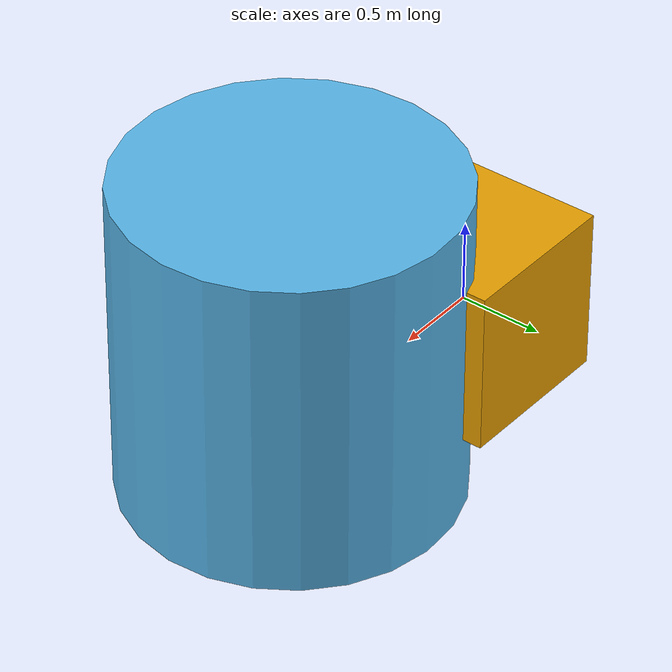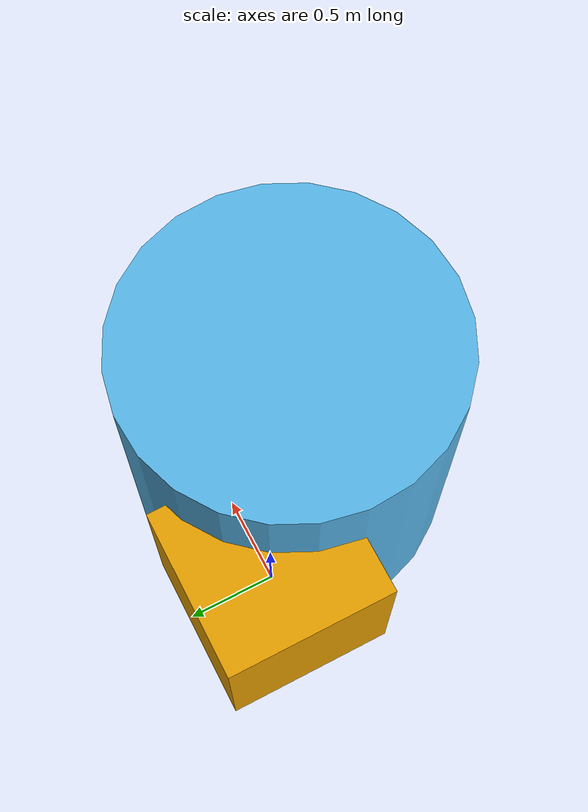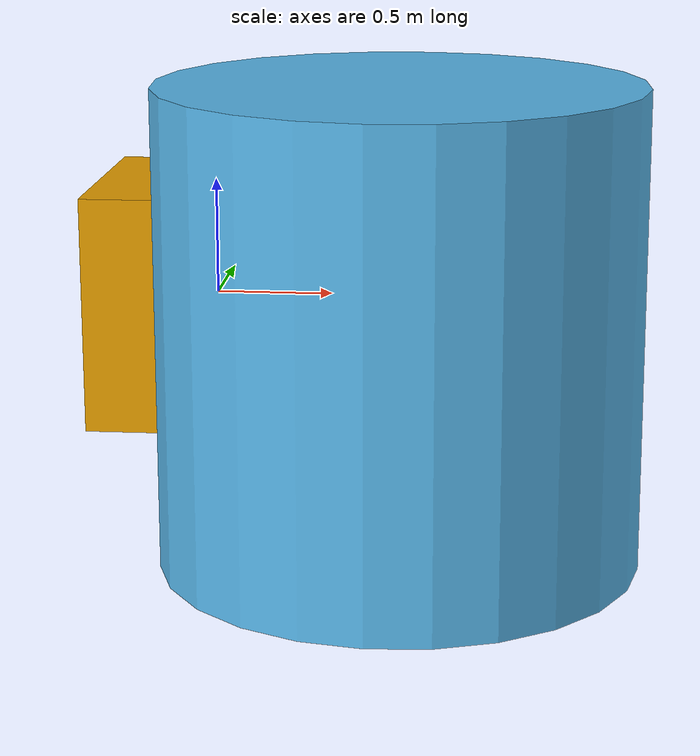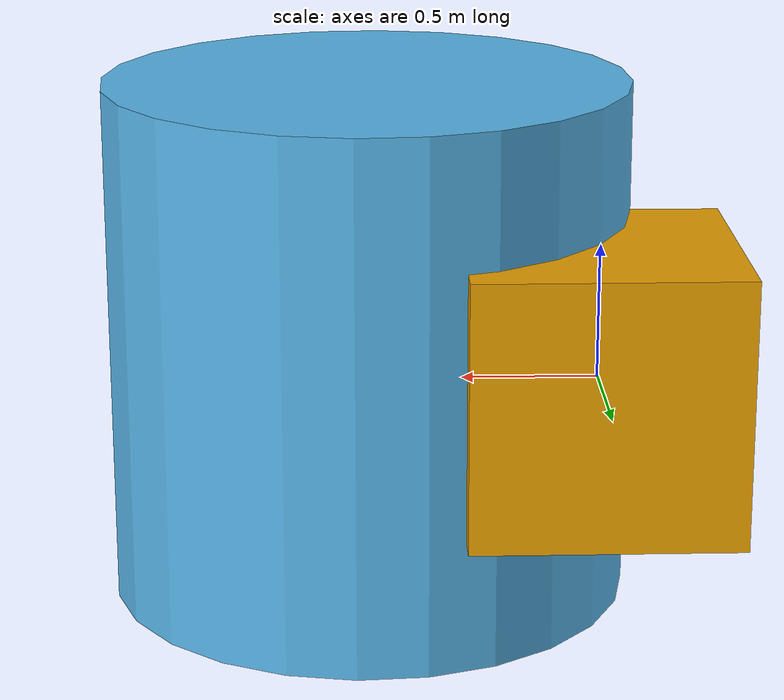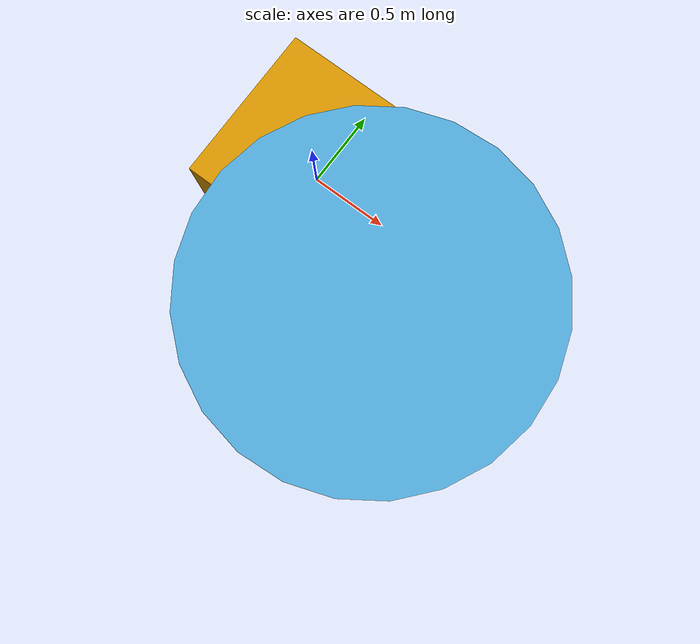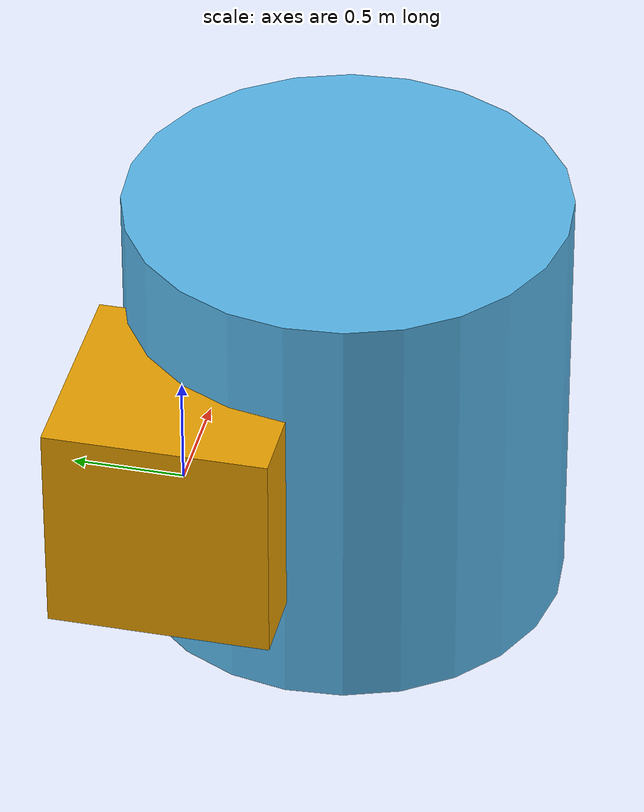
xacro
<?xml version="1.0"?>
    <robot xmlns:xacro="http://www.ros.org/wiki/xacro" name="theta">
        <link name="caixa">
            <visual>
                <origin xyz="0.0 0.0 0.0" rpy="0.0 0.0 0.0"/>
                    <geometry>
                        <box size="1 1 1"/>
                    </geometry>
            </visual>
        </link>

            <joint name="caixa_conector" type="revolute">
                <axis xyz="0.0 0.0 1"/>
                <limit lower="1000.0" upper="3.14" effort="3.14" velocity="1"/>
                <origin xyz="0.0 0.0 0.0" rpy="0.0 0.0 0.5"/>
                <parent link="caixa"/>
                <child link="roda"/>
            </joint>

        <link name="roda">
            <visual>
                <origin xyz="1 0.0 0.0" rpy="0.0 0.0 0.0"/>
                <geometry>
                    <cylinder radius="1" length="2"/>
                </geometry>
            </visual>
        </link>
    </robot>
